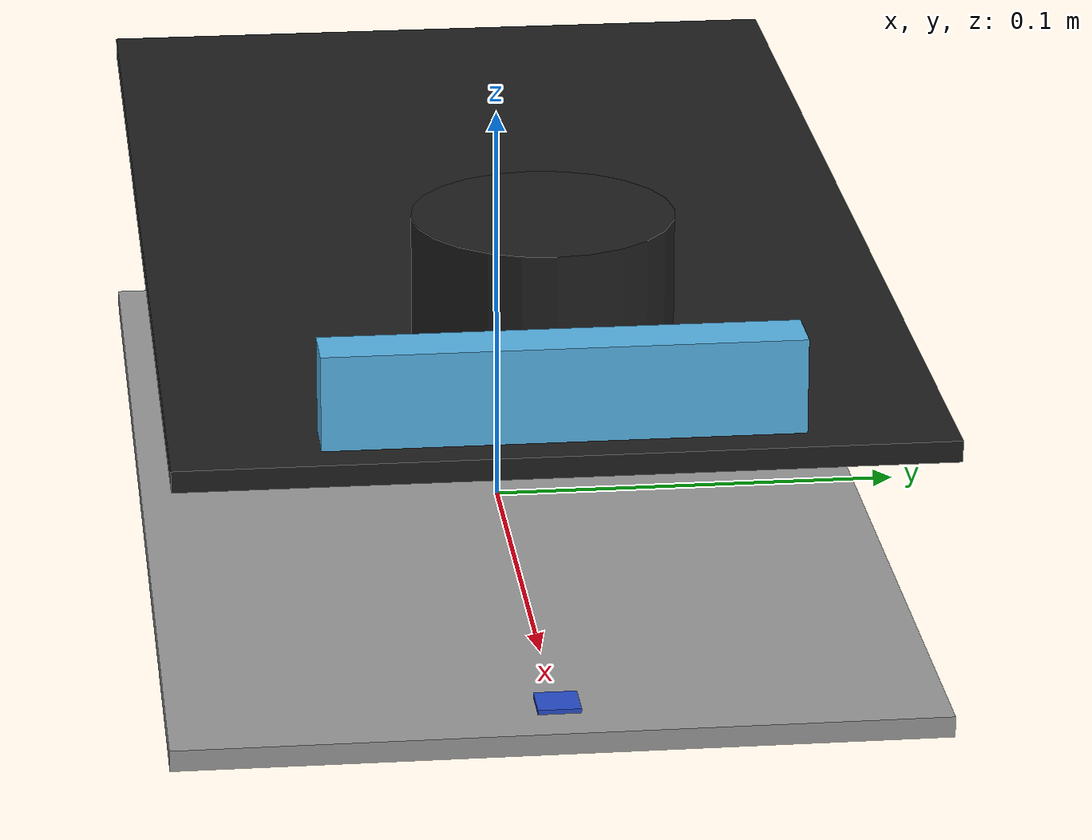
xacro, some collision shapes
<?xml version="1.0" ?>
<robot xmlns:xacro="http://www.ros.org/wiki/xacro">

  <xacro:include filename="$(find realsense_ros_gazebo)/xacro/tracker.xacro"/>

  <xacro:realsense_T265 sensor_name="camera" parent_link="top_plate_link" rate="30.0">
    <origin xyz="0.145 0.0 0.0125" rpy="0 0 0"/>
  </xacro:realsense_T265>

  <link name="slam_pack_mount_point">
    <visual>
      <origin xyz="0 0 0" rpy="0 0 0" />
      <geometry>
        <box size="0.305 0.178 0.005"/>
      </geometry>
      <material name="grey" />
    </visual>
    <inertial>
      <origin xyz="0.0 0.0 0.0" rpy="0.0 0.0 0.0" />
      <mass value="0.336"/>
      <inertia
        ixx="0.0005075" ixy="0.0" ixz="0.0"
        iyy="0.0018200" iyz="0.0"
        izz="0.0021875"/>
      </inertial>
  </link>

  <joint name="bottom_plate_link_joint" type="fixed">
    <parent link="slam_pack_mount_point"/>
    <child link="bottom_plate_link"/>
    <origin xyz="0 0 0" rpy="0 0 0"/>
  </joint>
  <link name="bottom_plate_link"/>

  <joint name="xavier_link_joint" type="fixed">
    <parent link="bottom_plate_link"/>
    <child link="xavier_link"/>
    <origin xyz="-0.0832 0 0.035" rpy="0 0 0"/>
  </joint>
  <link name="xavier_link">
    <visual>
      <origin xyz="0 0 0" rpy="0 0 0"/>
      <geometry>
        <box size="0.105 0.092 0.065"/>
      </geometry>
      <material name="light_black"/>
    </visual>
  </link>

  <joint name="top_plate_link_joint" type="fixed">
    <parent link="bottom_plate_link"/>
    <child link="top_plate_link"/>
    <origin xyz="0 0 0.07" rpy="0 0 0"/>
  </joint>
  <link name="top_plate_link">
    <visual>
      <origin xyz="0 0 0" rpy="0 0 0"/>
      <geometry>
        <box size="0.32 0.175 0.005"/>
      </geometry>
      <material name="black"/>
    </visual>
  </link>

  <link name="lidar_link">
    <visual>
      <origin xyz="0 0 0" rpy="0 0 0"/>
      <geometry>
        <cylinder length="0.04" radius="0.03"/>
      </geometry>
      <material name="light_black"/>
    </visual>
  </link>

  <joint name="lidar_link_joint" type="fixed">
    <parent link="top_plate_link"/>
    <child link="lidar_link"/>
    <origin xyz="0.105 0 0.02" rpy="0 0 ${pi}"/>
  </joint>

  <gazebo reference="lidar_link">
    <sensor name="gazebo_lidar" type="ray">
      <update_rate>12.0</update_rate>
      <plugin name="gazebo_lidar" filename="libgazebo_ros_laser.so">
        <topicName>scan</topicName>
        <namespace></namespace>
        <outputType>sensor_msgs/LaserScan</outputType>
        <frameName>lidar_link</frameName>
      </plugin>
      <ray>
        <scan>
          <horizontal>
            <samples>360</samples>
            <resolution>1</resolution>
            <min_angle>-3.14159</min_angle>
            <max_angle>3.14159</max_angle>
          </horizontal>
        </scan>
        <range>
          <min>0.120</min>
          <max>20</max>
          <resolution>0.015</resolution>
        </range>
        <noise>
          <type>gaussian</type>
          <mean>0.0</mean>
          <stddev>0.01</stddev>
        </noise>
      </ray>
    </sensor>
    <material>Gazebo/Grey</material>
  </gazebo>

  <link name="imu_link">
    <visual>
      <origin xyz="0 0 0" rpy="0 0 0"/>
      <geometry>
        <box size="0.01 0.01 0.002"/>
      </geometry>
      <material name="blue"/>
    </visual>
  </link>

  <joint name="imu_link_joint" type="fixed">
    <parent link="bottom_plate_link"/>
    <child link="imu_link"/>
    <origin xyz="0.1365 0 0.0026" rpy="0 0 0"/>
  </joint>

  <gazebo reference="imu_link">
    <sensor name="gazebo_imu" type="imu">
      <plugin name="gazebo_imu" filename="libgazebo_ros_imu_sensor.so">
        <updateRateHZ>30.0</updateRateHZ>
        <topicName>/imu</topicName>
        <frameName>imu_link</frameName>
      </plugin>
    </sensor>
    <material>Gazebo/Blue</material>
  </gazebo>

</robot>

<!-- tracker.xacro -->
<robot xmlns:xacro="http://www.ros.org/wiki/xacro">

  <xacro:macro name="T265_fisheye" params="sensor_name reference_frame topic rate">
    <gazebo reference="${reference_frame}">
      <sensor name="camera" type="wideanglecamera">
        <camera>
          <horizontal_fov>6.283</horizontal_fov>
          <image>
            <width>320</width>
            <height>240</height>
          </image>
          <clip>
            <near>0.1</near>
            <far>100</far>
          </clip>
          <lens>
            <type>custom</type>
            <custom_function>
              <c1>1.05</c1>
              <c2>4</c2>
              <f>1.0</f>
              <fun>tan</fun>
            </custom_function>
            <scale_to_hfov>true</scale_to_hfov>
            <cutoff_angle>6.283</cutoff_angle>
            <env_texture_size>512</env_texture_size>
          </lens>
          <always_on>true</always_on>
          <update_rate>30</update_rate>
        </camera>
        <plugin name="camera_controller" filename="libgazebo_ros_camera.so">
          <cameraName>${sensor_name}/${topic}</cameraName>
          <imageTopicName>image_raw</imageTopicName>
          <cameraInfoTopicName>camera_info</cameraInfoTopicName>
          <frameName>${reference_frame}</frameName>
          <hackBaseline>0.07</hackBaseline>
          <distortionK1>-0.007419134024530649</distortionK1>
          <distortionK2>0.041209351271390915</distortionK2>
          <distortionK3>-0.03811917081475258</distortionK3>
          <distortionT1>0.006366158835589886</distortionT1>
          <distortionT2>0.0</distortionT2>
          <CxPrime>416.00531005859375</CxPrime>
          <Cx>16.00531005859375</Cx>
          <Cy>403.38909912109375</Cy>
        </plugin>
      </sensor>
    </gazebo>
  </xacro:macro>

  <!-- INTEL REALSENSE T265 -->

  <xacro:macro name="realsense_T265" params="sensor_name parent_link rate *origin">

    <joint name="${sensor_name}_odom_frame_joint" type="fixed">
        <parent link="${parent_link}"/>
        <child link="${sensor_name}_odom_frame"/>
        <xacro:insert_block name="origin"/>
    </joint>

    <joint name="${sensor_name}_pose_frame_joint" type="fixed">
        <parent link="${sensor_name}_odom_frame"/>
        <child link="${sensor_name}_pose_frame"/>
        <origin rpy="0 0 0" xyz="0 0 0"/> <!-- check on real hw -->
    </joint>
    <link name="${sensor_name}_odom_frame" />

    <link name="${sensor_name}_pose_frame">
        <visual>
            <origin rpy="1.57 0 1.57" xyz="0 0 -0.478"/>
            <geometry>
                <mesh filename="package://realsense_ros_gazebo/meshes/realsense_t265.stl" scale="0.001 0.001 0.001"/>
            </geometry>
        </visual>
        <collision>
            <geometry>
                <box size="0.013 0.108 0.024"/>
            </geometry>
        </collision>
        <inertial>
            <mass value="0.055"/>
            <origin rpy="0 0 0" xyz="0 0 0"/>
            <inertia ixx="9.108e-05"
                     ixy="0"
                     ixz="0"
                     iyy="2.51e-06"
                     iyz="0"
                     izz="8.931e-05"/>
        </inertial>
    </link>

    <joint name="${sensor_name}_joint" type="fixed">
        <parent link="${sensor_name}_pose_frame"/>
        <child link="${sensor_name}_link"/>
        <origin rpy="0 0 0" xyz="0 0 0"/> <!-- check on real hw -->
    </joint>
    <link name="${sensor_name}_link"/>

    <joint name="${sensor_name}_fisheye1_joint" type="fixed">
        <parent link="${sensor_name}_link"/>
        <child link="${sensor_name}_fisheye1_frame"/>
        <origin rpy="0 0 0" xyz="0 0.042 0"/>
    </joint>
    <link name="${sensor_name}_fisheye1_frame"/>

    <joint name="${sensor_name}_fisheye1_optical_joint" type="fixed">
        <parent link="${sensor_name}_fisheye1_frame"/>
        <child link="${sensor_name}_fisheye1_optical_frame"/>
        <origin rpy="0 0 0" xyz="0.01 0 0"/>
    </joint>
    <link name="${sensor_name}_fisheye1_optical_frame"/>
    <xacro:T265_fisheye
      sensor_name="${sensor_name}"
      reference_frame="${sensor_name}_fisheye1_optical_frame"
      topic="fisheye1"
      rate="${rate}">
    </xacro:T265_fisheye>

    <joint name="${sensor_name}_fisheye2_joint" type="fixed">
        <parent link="${sensor_name}_link"/>
        <child link="${sensor_name}_fisheye2_frame"/>
        <origin rpy="0 0 0" xyz="0 -0.022 0"/>
    </joint>
    <link name="${sensor_name}_fisheye2_frame"/>

    <joint name="${sensor_name}_fisheye2_optical_joint" type="fixed">
        <parent link="${sensor_name}_fisheye2_frame"/>
        <child link="${sensor_name}_fisheye2_optical_frame"/>
        <origin rpy="0 0 0" xyz="0.01 0 0"/>
    </joint>
    <link name="${sensor_name}_fisheye2_optical_frame"/>
    <xacro:T265_fisheye
      sensor_name="${sensor_name}"
      reference_frame="${sensor_name}_fisheye2_optical_frame"
      topic="fisheye2"
      rate="${rate}">
    </xacro:T265_fisheye>

    <joint name="${sensor_name}_gyro_joint" type="fixed">
        <parent link="${sensor_name}_link"/>
        <child link="${sensor_name}_gyro_frame"/>
        <origin rpy="0 0 0" xyz="0 0 0"/> <!-- check on real hw -->
    </joint>
    <link name="${sensor_name}_gyro_frame"/>

    <gazebo reference="${sensor_name}_gyro_frame">
        <gravity>true</gravity>
        <sensor name="${sensor_name}_imu" type="imu">
            <always_on>true</always_on>
            <update_rate>${rate}</update_rate>
            <visualize>false</visualize>
            <plugin filename="libgazebo_ros_imu_sensor.so" name="imu_plugin">
                <topicName>${sensor_name}/gyro/sample</topicName>
                <bodyName>${sensor_name}_pose_frame</bodyName>
                <updateRateHZ>${rate}</updateRateHZ>
                <gaussianNoise>0.000001</gaussianNoise>
                <xyzOffset>0 0 0</xyzOffset>
                <rpyOffset>0 0 0</rpyOffset>
                <frameName>${sensor_name}_link</frameName>
            </plugin>
        </sensor>
    </gazebo>

    <joint name="${sensor_name}_accel_joint" type="fixed">
        <parent link="${sensor_name}_link"/>
        <child link="${sensor_name}_accel_frame"/>
        <origin rpy="0 0 0" xyz="0 0 0"/> <!-- check on real hw -->
    </joint>
    <link name="${sensor_name}_accel_frame"/> <!-- dummy -->

    <gazebo> <!-- odometry -->
        <plugin name="p3d_base_controller" filename="libgazebo_ros_p3d.so">
            <alwaysOn>true</alwaysOn>
            <updateRate>${rate}</updateRate>
            <bodyName>${sensor_name}_odom_frame</bodyName>
            <topicName>${sensor_name}/odom/sample</topicName>
            <gaussianNoise>0.001</gaussianNoise>
            <frameName>map</frameName>
            <xyzOffsets>0 0 0</xyzOffsets>
            <rpyOffsets>0 0 0</rpyOffsets>
        </plugin>
    </gazebo>

  </xacro:macro>

</robot>
